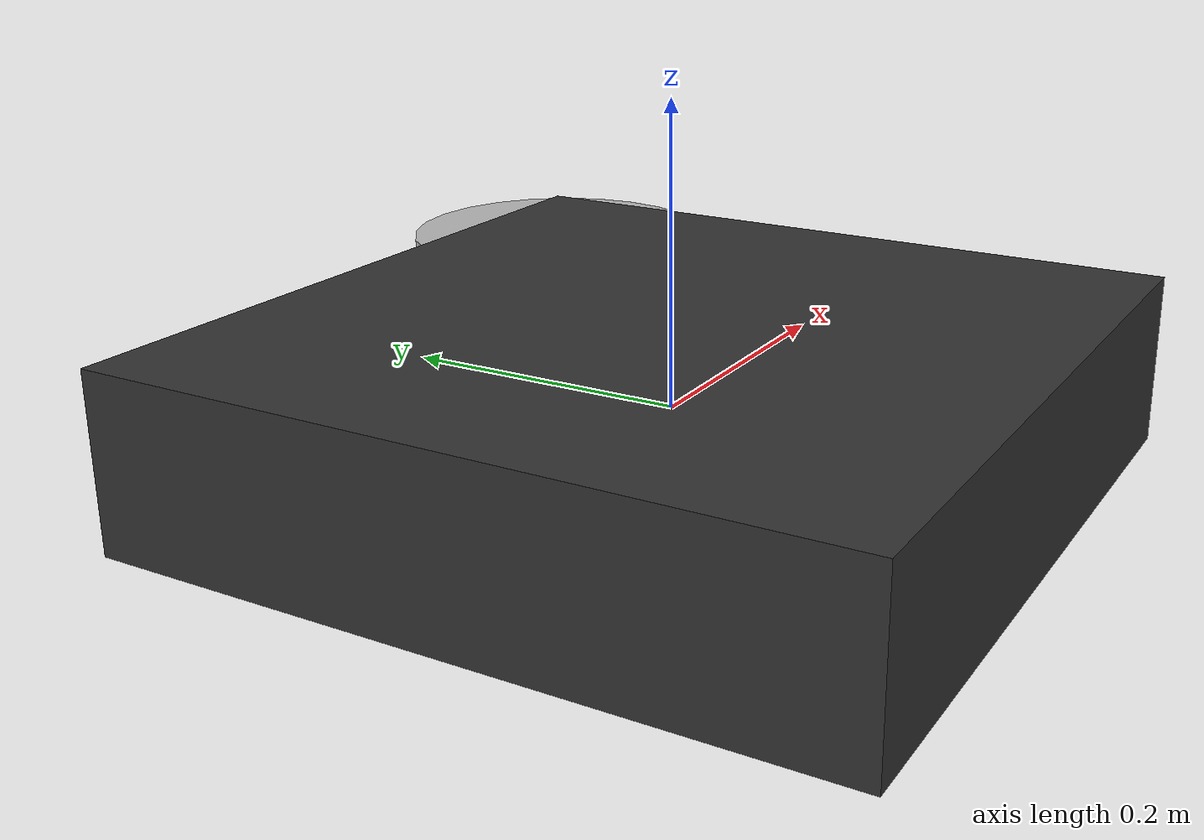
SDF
<?xml version="1.0" ?>
<sdf version="1.7">
    <model name="agricultural_drone">
        <!-- Main drone body -->
        <link name="base_link">
            <inertial>
                <mass>4.5</mass>
                <inertia>
                    <ixx>0.082</ixx>
                    <iyy>0.082</iyy>
                    <izz>0.149</izz>
                    <ixy>0</ixy>
                    <ixz>0</ixz>
                    <iyz>0</iyz>
                </inertia>
            </inertial>

            <collision name="collision">
                <geometry>
                    <box>
                        <size>0.50 0.50 0.12</size>
                    </box>
                </geometry>
            </collision>

            <visual name="visual">
                <geometry>
                    <box>
                        <size>0.50 0.50 0.12</size>
                    </box>
                </geometry>
                <material>
                    <ambient>0.2 0.2 0.2 1.0</ambient>
                    <diffuse>0.2 0.2 0.2 1.0</diffuse>
                    <specular>0.1 0.1 0.1 1.0</specular>
                </material>
            </visual>

            <!-- Camera Sensor -->
            <sensor name="camera_sensor" type="camera">
                <update_rate>30.0</update_rate>
                <camera>
                    <horizontal_fov>1.5708</horizontal_fov>
                    <image>
                        <width>1920</width>
                        <height>1080</height>
                        <format>R8G8B8</format>
                    </image>
                    <clip>
                        <near>0.1</near>
                        <far>100.0</far>
                    </clip>
                    <distortion>
                        <k1>0.0</k1>
                        <k2>0.0</k2>
                        <k3>0.0</k3>
                        <p1>0.0</p1>
                        <p2>0.0</p2>
                    </distortion>
                </camera>
            </sensor>

            <!-- IMU Sensor -->
            <sensor name="imu_sensor" type="imu">
                <update_rate>100.0</update_rate>
                <imu>
                    <noise>
                        <type>gaussian</type>
                        <accel>
                            <mean>0.0</mean>
                            <stddev>0.001</stddev>
                            <bias_mean>0.005</bias_mean>
                        </accel>
                        <gyro>
                            <mean>0.0</mean>
                            <stddev>0.0001</stddev>
                            <bias_mean>0.0001</bias_mean>
                        </gyro>
                    </noise>
                </imu>
            </sensor>

            <!-- GPS Sensor -->
            <sensor name="gps_sensor" type="gps">
                <update_rate>10.0</update_rate>
                <gps>
                    <position_sensing>
                        <horizontal>
                            <noise type="gaussian">
                                <mean>0.0</mean>
                                <stddev>0.1</stddev>
                            </noise>
                        </horizontal>
                        <vertical>
                            <noise type="gaussian">
                                <mean>0.0</mean>
                                <stddev>0.1</stddev>
                            </noise>
                        </vertical>
                    </position_sensing>
                    <velocity_sensing>
                        <horizontal>
                            <noise type="gaussian">
                                <mean>0.0</mean>
                                <stddev>0.05</stddev>
                            </noise>
                        </horizontal>
                        <vertical>
                            <noise type="gaussian">
                                <mean>0.0</mean>
                                <stddev>0.05</stddev>
                            </noise>
                        </vertical>
                    </velocity_sensing>
                </gps>
            </sensor>
        </link>

        <!-- Rotor joints and links -->
        <link name="rotor1">
            <pose>0.25 0.25 0.02 0 0 0</pose>
            <inertial>
                <mass>0.025</mass>
                <inertia>
                    <ixx>0.0000735</ixx>
                    <iyy>0.0000735</iyy>
                    <izz>0.0001470</izz>
                </inertia>
            </inertial>
            <collision name="collision">
                <geometry>
                    <cylinder>
                        <radius>0.12</radius>
                        <length>0.02</length>
                    </cylinder>
                </geometry>
            </collision>
            <visual name="visual">
                <geometry>
                    <cylinder>
                        <radius>0.12</radius>
                        <length>0.02</length>
                    </cylinder>
                </geometry>
            </visual>
        </link>

        <joint name="rotor1_joint" type="revolute">
            <parent>base_link</parent>
            <child>rotor1</child>
            <axis>
                <xyz>0 0 1</xyz>
                <limit>
                    <lower>-1e+16</lower>
                    <upper>1e+16</upper>
                </limit>
            </axis>
        </joint>

        <!-- Similar definitions for rotors 2-4 with appropriate poses -->
        <!-- Rotor 2 -->
        <link name="rotor2">
            <pose>-0.25 0.25 0.02 0 0 0</pose>
            <!-- Similar inertial, collision, and visual properties as rotor1 -->
        </link>
        <joint name="rotor2_joint" type="revolute">
            <parent>base_link</parent>
            <child>rotor2</child>
            <axis>
                <xyz>0 0 1</xyz>
                <limit>
                    <lower>-1e+16</lower>
                    <upper>1e+16</upper>
                </limit>
            </axis>
        </joint>

        <!-- Rotor 3 -->
        <link name="rotor3">
            <pose>-0.25 -0.25 0.02 0 0 0</pose>
            <!-- Similar inertial, collision, and visual properties as rotor1 -->
        </link>
        <joint name="rotor3_joint" type="revolute">
            <parent>base_link</parent>
            <child>rotor3</child>
            <axis>
                <xyz>0 0 1</xyz>
                <limit>
                    <lower>-1e+16</lower>
                    <upper>1e+16</upper>
                </limit>
            </axis>
        </joint>

        <!-- Rotor 4 -->
        <link name="rotor4">
            <pose>0.25 -0.25 0.02 0 0 0</pose>
            <!-- Similar inertial, collision, and visual properties as rotor1 -->
        </link>
        <joint name="rotor4_joint" type="revolute">
            <parent>base_link</parent>
            <child>rotor4</child>
            <axis>
                <xyz>0 0 1</xyz>
                <limit>
                    <lower>-1e+16</lower>
                    <upper>1e+16</upper>
                </limit>
            </axis>
        </joint>

        <!-- Drone Controller Plugin -->
        <plugin name="drone_controller" filename="librobotController.so">
            <update_rate>100.0</update_rate>
            <max_thrust>40.0</max_thrust>
            <max_torque>20.0</max_torque>
            <moment_constant>0.016</moment_constant>
            <motor_constant>8.54858e-06</motor_constant>
            <position_gain>
                <x>5.0</x>
                <y>5.0</y>
                <z>7.0</z>
            </position_gain>
            <velocity_gain>
                <x>2.0</x>
                <y>2.0</y>
                <z>3.0</z>
            </velocity_gain>
        </plugin>

        <!-- Sensor Suite Plugin -->
        <plugin name="sensor_suite" filename="libsensorPlugin.so">
            <camera_update_rate>30.0</camera_update_rate>
            <imu_update_rate>100.0</imu_update_rate>
            <gps_update_rate>10.0</gps_update_rate>
            <camera_topic>/drone/camera/image_raw</camera_topic>
            <imu_topic>/drone/imu/data</imu_topic>
            <gps_topic>/drone/gps/fix</gps_topic>
        </plugin>
    </model>
</sdf>
